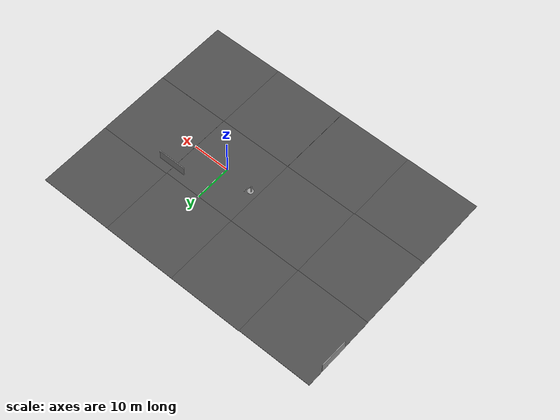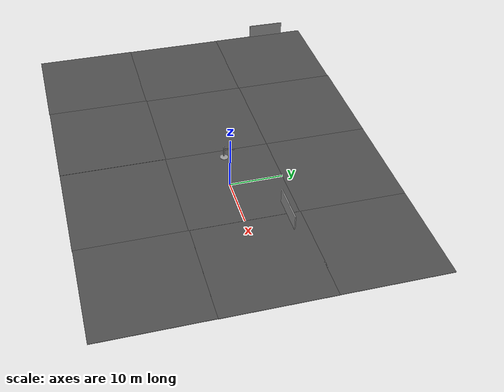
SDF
<sdf version="1.4">
 <world name="default">
  <model name="grey_wall">
   <static>1</static>
   <link name="link">
    <pose>0 0 1.4 0 -0 0</pose>
    <collision name="collision"><geometry><box><size>7.5 0.2 2.8</size></box></geometry></collision>
    <visual name="visual">
     <cast_shadows>0</cast_shadows>
     <geometry><box><size>7.5 0.2 2.8</size></box></geometry>
     <material>
      <script>
       <uri>model://grey_wall/materials/scripts</uri>
       <uri>model://grey_wall/materials/textures</uri>
       <name>vrc/grey_wall</name>
      </script>
     </material>
    </visual>
    <velocity_decay><linear>0</linear><angular>0</angular></velocity_decay>
   </link>
   <pose>10.402 7.71769 0 0 -0 0</pose>
  </model>
  <model name="double_pendulum_with_base">
   <link name="base">
    <inertial>
     <mass>100</mass>
     <inertia><ixx>1</ixx><ixy>0</ixy><ixz>0</ixz><iyy>1</iyy><iyz>0</iyz><izz>1</izz></inertia>
    </inertial>
    <visual name="vis_plate_on_ground">
     <pose>0 0 0.01 0 -0 0</pose>
     <geometry><cylinder><radius>0.8</radius><length>0.02</length></cylinder></geometry>
     <material>
      <script><uri>file://media/materials/scripts/gazebo.material</uri><name>Gazebo/Grey</name></script>
     </material>
    </visual>
    <visual name="vis_pole">
     <pose>-0.275 0 1.1 0 -0 0</pose>
     <geometry><box><size>0.2 0.2 2.2</size></box></geometry>
     <material>
      <script><uri>file://media/materials/scripts/gazebo.material</uri><name>Gazebo/Grey</name></script>
     </material>
    </visual>
    <collision name="col_plate_on_ground">
     <pose>0 0 0.01 0 -0 0</pose>
     <geometry><cylinder><radius>0.8</radius><length>0.02</length></cylinder></geometry>
    </collision>
    <collision name="col_pole">
     <pose>-0.275 0 1.1 0 -0 0</pose>
     <geometry><box><size>0.2 0.2 2.2</size></box></geometry>
    </collision>
    <velocity_decay><linear>0</linear><angular>0</angular></velocity_decay>
   </link>
   <link name="upper_link">
    <pose>0 0 2.1 -1.5708 0 0</pose>
    <inertial>
     <pose>0 0 0.5 0 -0 0</pose>
     <inertia><ixx>1</ixx><ixy>0</ixy><ixz>0</ixz><iyy>1</iyy><iyz>0</iyz><izz>1</izz></inertia>
     <mass>1</mass>
    </inertial>
    <visual name="vis_upper_joint">
     <pose>-0.05 0 0 3.14159 1.57079 3.14159</pose>
     <geometry><cylinder><radius>0.1</radius><length>0.3</length></cylinder></geometry>
     <material>
      <script><uri>file://media/materials/scripts/gazebo.material</uri><name>Gazebo/Grey</name></script>
     </material>
    </visual>
    <visual name="vis_lower_joint">
     <pose>0 0 1 3.14159 1.57079 3.14159</pose>
     <geometry><cylinder><radius>0.1</radius><length>0.2</length></cylinder></geometry>
     <material>
      <script><uri>file://media/materials/scripts/gazebo.material</uri><name>Gazebo/Grey</name></script>
     </material>
    </visual>
    <visual name="vis_cylinder">
     <pose>0 0 0.5 0 -0 0</pose>
     <geometry><cylinder><radius>0.1</radius><length>0.9</length></cylinder></geometry>
     <material>
      <script><uri>file://media/materials/scripts/gazebo.material</uri><name>Gazebo/Grey</name></script>
     </material>
    </visual>
    <collision name="col_upper_joint">
     <pose>-0.05 0 0 3.14159 1.57079 3.14159</pose>
     <geometry><cylinder><radius>0.1</radius><length>0.3</length></cylinder></geometry>
    </collision>
    <collision name="col_lower_joint">
     <pose>0 0 1 3.14159 1.57079 3.14159</pose>
     <geometry><cylinder><radius>0.1</radius><length>0.2</length></cylinder></geometry>
    </collision>
    <collision name="col_cylinder">
     <pose>0 0 0.5 0 -0 0</pose>
     <geometry><cylinder><radius>0.1</radius><length>0.9</length></cylinder></geometry>
    </collision>
    <velocity_decay><linear>0</linear><angular>0</angular></velocity_decay>
   </link>
   <link name="lower_link">
    <pose>0.25 1 2.1 -2 0 0</pose>
    <inertial>
     <pose>0 0 0.5 0 -0 0</pose>
     <inertia><ixx>1</ixx><ixy>0</ixy><ixz>0</ixz><iyy>1</iyy><iyz>0</iyz><izz>1</izz></inertia>
     <mass>1</mass>
    </inertial>
    <visual name="vis_lower_joint">
     <pose>0 0 0 3.14159 1.57079 3.14159</pose>
     <geometry><cylinder><radius>0.08</radius><length>0.3</length></cylinder></geometry>
     <material>
      <script><uri>file://media/materials/scripts/gazebo.material</uri><name>Gazebo/Grey</name></script>
     </material>
    </visual>
    <visual name="vis_cylinder">
     <pose>0 0 0.5 0 -0 0</pose>
     <geometry><cylinder><radius>0.1</radius><length>0.9</length></cylinder></geometry>
     <material>
      <script><uri>file://media/materials/scripts/gazebo.material</uri><name>Gazebo/Grey</name></script>
     </material>
    </visual>
    <collision name="col_lower_joint">
     <pose>0 0 0 3.14159 1.57079 3.14159</pose>
     <geometry><cylinder><radius>0.08</radius><length>0.3</length></cylinder></geometry>
    </collision>
    <collision name="col_cylinder">
     <pose>0 0 0.5 0 -0 0</pose>
     <geometry><cylinder><radius>0.1</radius><length>0.9</length></cylinder></geometry>
    </collision>
    <velocity_decay><linear>0</linear><angular>0</angular></velocity_decay>
   </link>
   <joint name="upper_joint" type="revolute">
    <parent>base</parent>
    <child>upper_link</child>
    <axis><xyz>1 0 0</xyz><limit><lower>-1e+16</lower><upper>1e+16</upper></limit></axis>
   </joint>
   <joint name="lower_joint" type="revolute">
    <parent>upper_link</parent>
    <child>lower_link</child>
    <axis><xyz>1 0 0</xyz><limit><lower>-1e+16</lower><upper>1e+16</upper></limit></axis>
   </joint>
   <pose>-8.01195 1.00463 0.049997 5e-06 -1.3e-05 -0.062844</pose>
   <static>0</static>
  </model>
  <model name="asphalt_plane">
   <static>1</static>
   <link name="link">
    <collision name="collision"><geometry><box><size>20 20 0.1</size></box></geometry></collision>
    <visual name="visual">
     <cast_shadows>0</cast_shadows>
     <geometry><box><size>20 20 0.1</size></box></geometry>
     <material>
      <script>
       <uri>model://asphalt_plane/materials/scripts</uri>
       <uri>model://asphalt_plane/materials/textures</uri>
       <name>vrc/asphalt</name>
      </script>
     </material>
    </visual>
    <velocity_decay><linear>0</linear><angular>0</angular></velocity_decay>
   </link>
  </model>
  <model name="asphalt_plane_0">
   <static>1</static>
   <link name="link">
    <collision name="collision"><geometry><box><size>20 20 0.1</size></box></geometry></collision>
    <visual name="visual">
     <cast_shadows>0</cast_shadows>
     <geometry><box><size>20 20 0.1</size></box></geometry>
     <material>
      <script>
       <uri>model://asphalt_plane/materials/scripts</uri>
       <uri>model://asphalt_plane/materials/textures</uri>
       <name>vrc/asphalt</name>
      </script>
     </material>
    </visual>
    <velocity_decay><linear>0</linear><angular>0</angular></velocity_decay>
   </link>
   <pose>-20 0 0 0 -0 0</pose>
  </model>
  <model name="asphalt_plane_1">
   <static>1</static>
   <link name="link">
    <collision name="collision"><geometry><box><size>20 20 0.1</size></box></geometry></collision>
    <visual name="visual">
     <cast_shadows>0</cast_shadows>
     <geometry><box><size>20 20 0.1</size></box></geometry>
     <material>
      <script>
       <uri>model://asphalt_plane/materials/scripts</uri>
       <uri>model://asphalt_plane/materials/textures</uri>
       <name>vrc/asphalt</name>
      </script>
     </material>
    </visual>
    <velocity_decay><linear>0</linear><angular>0</angular></velocity_decay>
   </link>
   <pose>-39.9163 -0.03224 0 0 -0 0</pose>
  </model>
  <model name="asphalt_plane_2">
   <static>1</static>
   <link name="link">
    <collision name="collision"><geometry><box><size>20 20 0.1</size></box></geometry></collision>
    <visual name="visual">
     <cast_shadows>0</cast_shadows>
     <geometry><box><size>20 20 0.1</size></box></geometry>
     <material>
      <script>
       <uri>model://asphalt_plane/materials/scripts</uri>
       <uri>model://asphalt_plane/materials/textures</uri>
       <name>vrc/asphalt</name>
      </script>
     </material>
    </visual>
    <velocity_decay><linear>0</linear><angular>0</angular></velocity_decay>
   </link>
   <pose>20.0165 0.172741 0 0 -0 0</pose>
  </model>
  <model name="asphalt_plane_4">
   <static>1</static>
   <link name="link">
    <collision name="collision"><geometry><box><size>20 20 0.1</size></box></geometry></collision>
    <visual name="visual">
     <cast_shadows>0</cast_shadows>
     <geometry><box><size>20 20 0.1</size></box></geometry>
     <material>
      <script>
       <uri>model://asphalt_plane/materials/scripts</uri>
       <uri>model://asphalt_plane/materials/textures</uri>
       <name>vrc/asphalt</name>
      </script>
     </material>
    </visual>
    <velocity_decay><linear>0</linear><angular>0</angular></velocity_decay>
   </link>
   <pose>-39.9652 19.9013 0 0 -0 0</pose>
  </model>
  <model name="asphalt_plane_5">
   <static>1</static>
   <link name="link">
    <collision name="collision"><geometry><box><size>20 20 0.1</size></box></geometry></collision>
    <visual name="visual">
     <cast_shadows>0</cast_shadows>
     <geometry><box><size>20 20 0.1</size></box></geometry>
     <material>
      <script>
       <uri>model://asphalt_plane/materials/scripts</uri>
       <uri>model://asphalt_plane/materials/textures</uri>
       <name>vrc/asphalt</name>
      </script>
     </material>
    </visual>
    <velocity_decay><linear>0</linear><angular>0</angular></velocity_decay>
   </link>
   <pose>-20 20 0 0 -0 0</pose>
  </model>
  <model name="asphalt_plane_6">
   <static>1</static>
   <link name="link">
    <collision name="collision"><geometry><box><size>20 20 0.1</size></box></geometry></collision>
    <visual name="visual">
     <cast_shadows>0</cast_shadows>
     <geometry><box><size>20 20 0.1</size></box></geometry>
     <material>
      <script>
       <uri>model://asphalt_plane/materials/scripts</uri>
       <uri>model://asphalt_plane/materials/textures</uri>
       <name>vrc/asphalt</name>
      </script>
     </material>
    </visual>
    <velocity_decay><linear>0</linear><angular>0</angular></velocity_decay>
   </link>
   <pose>0 20 0 0 -0 0</pose>
  </model>
  <model name="asphalt_plane_7">
   <static>1</static>
   <link name="link">
    <collision name="collision"><geometry><box><size>20 20 0.1</size></box></geometry></collision>
    <visual name="visual">
     <cast_shadows>0</cast_shadows>
     <geometry><box><size>20 20 0.1</size></box></geometry>
     <material>
      <script>
       <uri>model://asphalt_plane/materials/scripts</uri>
       <uri>model://asphalt_plane/materials/textures</uri>
       <name>vrc/asphalt</name>
      </script>
     </material>
    </visual>
    <velocity_decay><linear>0</linear><angular>0</angular></velocity_decay>
   </link>
   <pose>20 20 0 0 -0 0</pose>
  </model>
  <model name="asphalt_plane_10">
   <static>1</static>
   <link name="link">
    <collision name="collision"><geometry><box><size>20 20 0.1</size></box></geometry></collision>
    <visual name="visual">
     <cast_shadows>0</cast_shadows>
     <geometry><box><size>20 20 0.1</size></box></geometry>
     <material>
      <script>
       <uri>model://asphalt_plane/materials/scripts</uri>
       <uri>model://asphalt_plane/materials/textures</uri>
       <name>vrc/asphalt</name>
      </script>
     </material>
    </visual>
    <velocity_decay><linear>0</linear><angular>0</angular></velocity_decay>
   </link>
   <pose>19.9647 -19.8304 0 0 -0 0</pose>
  </model>
  <model name="asphalt_plane_11">
   <static>1</static>
   <link name="link">
    <collision name="collision"><geometry><box><size>20 20 0.1</size></box></geometry></collision>
    <visual name="visual">
     <cast_shadows>0</cast_shadows>
     <geometry><box><size>20 20 0.1</size></box></geometry>
     <material>
      <script>
       <uri>model://asphalt_plane/materials/scripts</uri>
       <uri>model://asphalt_plane/materials/textures</uri>
       <name>vrc/asphalt</name>
      </script>
     </material>
    </visual>
    <velocity_decay><linear>0</linear><angular>0</angular></velocity_decay>
   </link>
   <pose>-0.006817 -19.8897 0 0 -0 0</pose>
  </model>
  <model name="asphalt_plane_12">
   <static>1</static>
   <link name="link">
    <collision name="collision"><geometry><box><size>20 20 0.1</size></box></geometry></collision>
    <visual name="visual">
     <cast_shadows>0</cast_shadows>
     <geometry><box><size>20 20 0.1</size></box></geometry>
     <material>
      <script>
       <uri>model://asphalt_plane/materials/scripts</uri>
       <uri>model://asphalt_plane/materials/textures</uri>
       <name>vrc/asphalt</name>
      </script>
     </material>
    </visual>
    <velocity_decay><linear>0</linear><angular>0</angular></velocity_decay>
   </link>
   <pose>-20.053 -19.906 0 0 -0 0</pose>
  </model>
  <model name="asphalt_plane_13">
   <static>1</static>
   <link name="link">
    <collision name="collision"><geometry><box><size>20 20 0.1</size></box></geometry></collision>
    <visual name="visual">
     <cast_shadows>0</cast_shadows>
     <geometry><box><size>20 20 0.1</size></box></geometry>
     <material>
      <script>
       <uri>model://asphalt_plane/materials/scripts</uri>
       <uri>model://asphalt_plane/materials/textures</uri>
       <name>vrc/asphalt</name>
      </script>
     </material>
    </visual>
    <velocity_decay><linear>0</linear><angular>0</angular></velocity_decay>
   </link>
   <pose>-39.9665 -19.9754 0 0 -0 0</pose>
  </model>
  <model name="grey_wall_0">
   <static>1</static>
   <link name="link">
    <pose>0 0 1.4 0 -0 0</pose>
    <collision name="collision"><geometry><box><size>7.5 0.2 2.8</size></box></geometry></collision>
    <visual name="visual">
     <cast_shadows>0</cast_shadows>
     <geometry><box><size>7.5 0.2 2.8</size></box></geometry>
     <material>
      <script>
       <uri>model://grey_wall/materials/scripts</uri>
       <uri>model://grey_wall/materials/textures</uri>
       <name>vrc/grey_wall</name>
      </script>
     </material>
    </visual>
    <velocity_decay><linear>0</linear><angular>0</angular></velocity_decay>
   </link>
   <pose>-49.8984 21.8032 0 0 -0 1.55838</pose>
  </model>
 </world>
</sdf>
